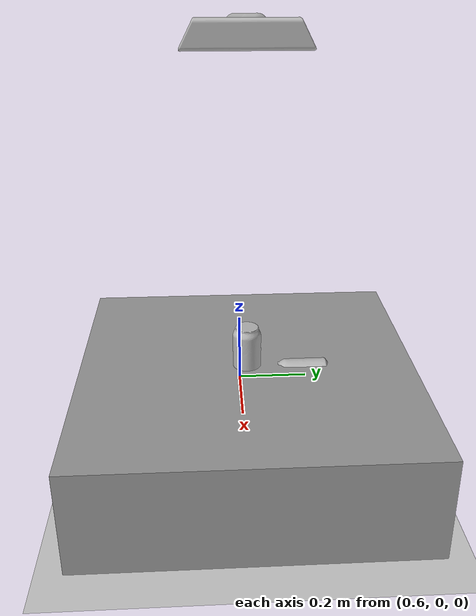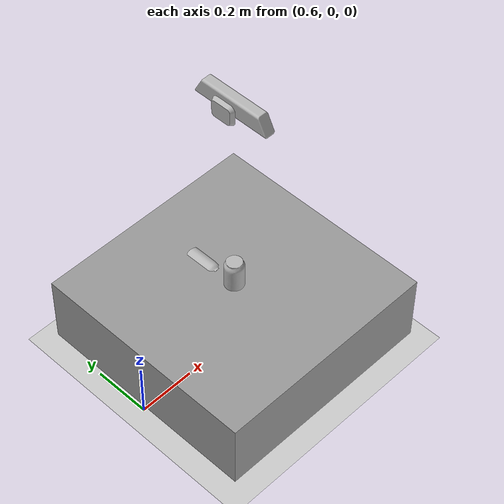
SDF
<?xml version="1.0" ?>
<sdf version="1.6">
  <world name="default">
    <include>
      <uri>model://ground_plane</uri>
    </include>

    <include>
      <uri>model://sun</uri>
    </include>

    <physics type="ode">
      <real_time_update_rate>1000.0</real_time_update_rate>
    </physics>

    <gui fullscreen='0'>
    </gui>

      <model name='my_table'>
    <link name='link_0'>
      <inertial>
        <mass>112</mass>
        <inertia>
          <ixx>6.55667</ixx>
          <ixy>0</ixy>
          <ixz>0</ixz>
          <iyy>6.55667</iyy>
          <iyz>0</iyz>
          <izz>11.9467</izz>
        </inertia>
        <pose>0 0 0 0 -0 0</pose>
      </inertial>
      <pose>1 0 0.15 0 -0 0</pose>
      <gravity>1</gravity>
      <self_collide>0</self_collide>
      <kinematic>0</kinematic>
      <enable_wind>0</enable_wind>
      <visual name='visual'>
        <pose>0 0 0 0 -0 0</pose>
        <geometry>
          <box>
            <size>0.8 0.8 0.25</size>
          </box>
        </geometry>
        <material>
          <lighting>1</lighting>
          <script>
            <uri>file://media/materials/scripts/gazebo.material</uri>
            <name>Gazebo/Grey</name>
          </script>
          <shader type='pixel'>
            <normal_map>__default__</normal_map>
          </shader>
          <ambient>0.3 0.3 0.3 1</ambient>
          <diffuse>0.7 0.7 0.7 1</diffuse>
          <specular>0.01 0.01 0.01 1</specular>
          <emissive>0 0 0 1</emissive>
        </material>
        <transparency>0</transparency>
        <cast_shadows>1</cast_shadows>
      </visual>
      <collision name='collision'>
        <laser_retro>0</laser_retro>
        <max_contacts>10</max_contacts>
        <pose>0 0 0 0 -0 0</pose>
        <geometry>
          <box>
            <size>0.8 0.8 0.25</size>
          </box>
        </geometry>
        <surface>
          <friction>
            <ode>
              <mu>1</mu>
              <mu2>1</mu2>
              <fdir1>0 0 0</fdir1>
              <slip1>0</slip1>
              <slip2>0</slip2>
            </ode>
            <torsional>
              <coefficient>1</coefficient>
              <patch_radius>0</patch_radius>
              <surface_radius>0</surface_radius>
              <use_patch_radius>1</use_patch_radius>
              <ode>
                <slip>0</slip>
              </ode>
            </torsional>
          </friction>
          <bounce>
            <restitution_coefficient>0</restitution_coefficient>
            <threshold>1e+06</threshold>
          </bounce>
          <contact>
            <collide_without_contact>0</collide_without_contact>
            <collide_without_contact_bitmask>1</collide_without_contact_bitmask>
            <collide_bitmask>1</collide_bitmask>
            <ode>
              <soft_cfm>0</soft_cfm>
              <soft_erp>0.2</soft_erp>
              <kp>1e+13</kp>
              <kd>1</kd>
              <max_vel>0.01</max_vel>
              <min_depth>0</min_depth>
            </ode>
            <bullet>
              <split_impulse>1</split_impulse>
              <split_impulse_penetration_threshold>-0.01</split_impulse_penetration_threshold>
              <soft_cfm>0</soft_cfm>
              <soft_erp>0.2</soft_erp>
              <kp>1e+13</kp>
              <kd>1</kd>
            </bullet>
          </contact>
        </surface>
      </collision>
    </link>
    <model name='coke_can'>
      <link name='link'>
        <inertial>
          <pose>0 0 0.06 0 -0 0</pose>
          <mass>0.39</mass>
          <inertia>
            <ixx>0.00055575</ixx>
            <ixy>0</ixy>
            <ixz>0</ixz>
            <iyy>0.00055575</iyy>
            <iyz>0</iyz>
            <izz>0.0001755</izz>
          </inertia>
        </inertial>
        <collision name='collision'>
          <pose>0.003937 0.004724 -0.18 0 -0 0</pose>
          <geometry>
            <mesh>
              <uri>model://coke_can/meshes/coke_can.dae</uri>
            </mesh>
          </geometry>
          <surface>
            <friction>
              <ode>
                <mu>1</mu>
                <mu2>1</mu2>
              </ode>
              <torsional>
                <ode/>
              </torsional>
            </friction>
            <contact>
              <ode>
                <kp>1e+07</kp>
                <kd>1</kd>
                <min_depth>0.001</min_depth>
                <max_vel>0.1</max_vel>
              </ode>
            </contact>
            <bounce/>
          </surface>
          <max_contacts>10</max_contacts>
        </collision>
        <visual name='visual'>
          <pose>0.003937 0.004724 -0.18 0 -0 0</pose>
          <geometry>
            <mesh>
              <uri>model://coke_can/meshes/coke_can.dae</uri>
            </mesh>
          </geometry>
        </visual>
        <self_collide>0</self_collide>
        <enable_wind>0</enable_wind>
        <kinematic>0</kinematic>
      </link>
      <pose>1 0 0.25 0 0 0</pose>
    </model>
        <model name='coke_can1'>
      <link name='link'>
        <inertial>
          <pose>0 0 0.06 0 -0 0</pose>
          <mass>0.39</mass>
          <inertia>
            <ixx>0.00055575</ixx>
            <ixy>0</ixy>
            <ixz>0</ixz>
            <iyy>0.00055575</iyy>
            <iyz>0</iyz>
            <izz>0.0001755</izz>
          </inertia>
        </inertial>
        <collision name='collision'>
          <pose>0.003937 0.004724 -0.18 0 -0 0</pose>
          <geometry>
            <mesh>
              <uri>model://coke_can/meshes/coke_can.dae</uri>
            </mesh>
          </geometry>
          <surface>
            <friction>
              <ode>
                <mu>1</mu>
                <mu2>1</mu2>
              </ode>
              <torsional>
                <ode/>
              </torsional>
            </friction>
            <contact>
              <ode>
                <kp>1e+07</kp>
                <kd>1</kd>
                <min_depth>0.001</min_depth>
                <max_vel>0.1</max_vel>
              </ode>
            </contact>
            <bounce/>
          </surface>
          <max_contacts>10</max_contacts>
        </collision>
        <visual name='visual'>
          <pose>0.003937 0.004724 -0.18 0 -0 0</pose>
          <geometry>
            <mesh>
              <uri>model://coke_can/meshes/coke_can.dae</uri>
            </mesh>
          </geometry>
        </visual>
        <self_collide>0</self_collide>
        <enable_wind>0</enable_wind>
        <kinematic>0</kinematic>
      </link>
      <pose>1 0.2 0.25 1.570795 0 0</pose>
    </model>
    <model name='kinect'>
      <static>1</static>
      <pose>1 0 1 0 1.57079 0</pose>
      <link name='link'>
        <inertial>
          <mass>0.1</mass>
        </inertial>
        <collision name='collision'>
          <geometry>
            <box>
              <size>0.073 0.276 0.072</size>
            </box>
          </geometry>
          <max_contacts>10</max_contacts>
          <surface>
            <contact>
              <ode/>
            </contact>
            <bounce/>
            <friction>
              <torsional>
                <ode/>
              </torsional>
              <ode/>
            </friction>
          </surface>
        </collision>
        <visual name='visual'>
          <geometry>
            <mesh>
              <uri>model://kinect/meshes/kinect.dae</uri>
            </mesh>
          </geometry>
        </visual>
        <sensor name='camera' type='depth'>
          <update_rate>20</update_rate>
          <camera>
            <horizontal_fov>1.0472</horizontal_fov>
            <image>
              <width>640</width>
              <height>480</height>
              <format>R8G8B8</format>
            </image>
            <clip>
              <near>0.05</near>
              <far>3</far>
            </clip>
          </camera>
          <plugin name='camera_plugin' filename='libgazebo_ros_openni_kinect.so'>
            <baseline>0.2</baseline>
            <alwaysOn>1</alwaysOn>
            <updateRate>0.0</updateRate>
            <cameraName>camera_ir</cameraName>
            <imageTopicName>/camera/color/image_raw</imageTopicName>
            <cameraInfoTopicName>/camera/color/camera_info</cameraInfoTopicName>
            <depthImageTopicName>/camera/depth/image_raw</depthImageTopicName>
            <depthImageCameraInfoTopicName>/camera/depth/camera_info</depthImageCameraInfoTopicName>
            <pointCloudTopicName>/camera/depth/points</pointCloudTopicName>
            <frameName>camera_link</frameName>
            <pointCloudCutoff>0.5</pointCloudCutoff>
            <pointCloudCutoffMax>3.0</pointCloudCutoffMax>
            <distortionK1>0</distortionK1>
            <distortionK2>0</distortionK2>
            <distortionK3>0</distortionK3>
            <distortionT1>0</distortionT1>
            <distortionT2>0</distortionT2>
            <CxPrime>0</CxPrime>
            <Cx>0</Cx>
            <Cy>0</Cy>
            <focalLength>0</focalLength>
            <hackBaseline>0</hackBaseline>
          </plugin>
        </sensor>
        <self_collide>0</self_collide>
        <enable_wind>0</enable_wind>
        <kinematic>0</kinematic>
      </link>
    </model>
    <static>0</static>
    <allow_auto_disable>1</allow_auto_disable>
  </model>

  </world>
</sdf>
